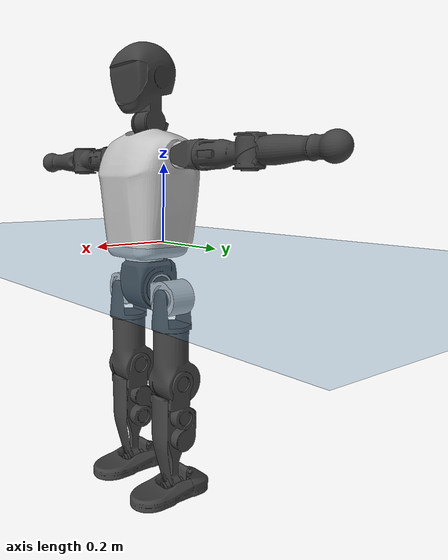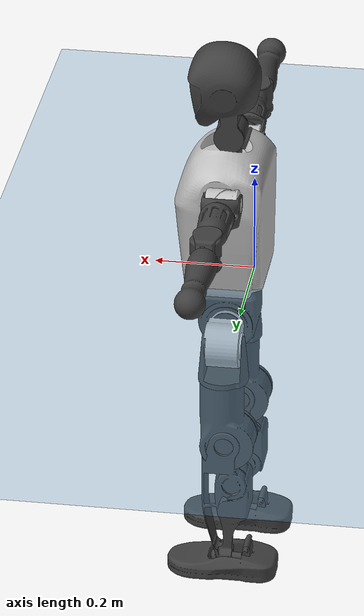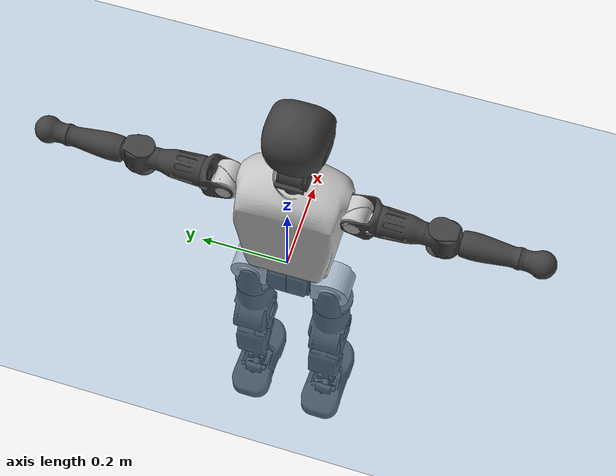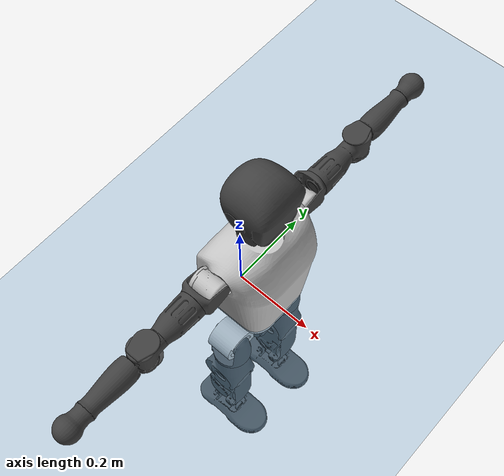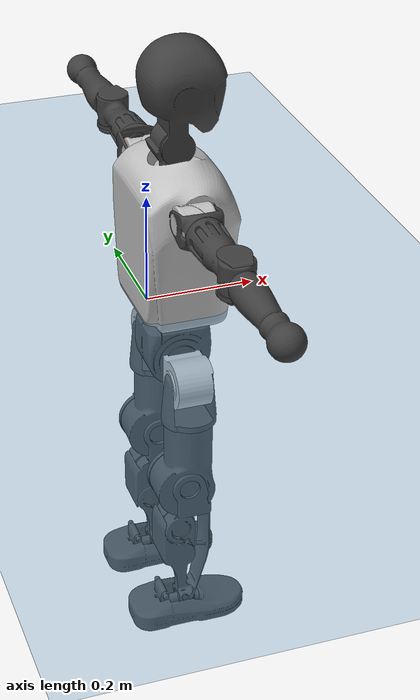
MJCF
<mujoco model="T1">
  <compiler angle="radian" assetdir="assets" balanceinertia="true" inertiafromgeom="false"/>

  <option timestep="0.005" density="1.2" viscosity="2e-05"/>

  <size nkey="1"/>

  <visual>
    <quality shadowsize="8192"/>
    <map shadowclip="0.5"/>
  </visual>

  <default>
    <default class="/">
      <joint armature="0.01" damping="0.01" frictionloss="0.1"/>
      <geom contype="0" conaffinity="0" group="1" solref="-1000 -80"/>
      <site size="0.01 0.005 0.005" group="5"/>
      <general forcelimited="true" biastype="affine" gainprm="25" biasprm="0 -25 -0.6"/>
      <default class="t1">
        <geom rgba="0.25 0.25 0.25 1"/>
        <default class="visual">
          <geom type="mesh" group="2"/>
        </default>
        <default class="collision">
          <geom group="3"/>
        </default>
        <default class="foot">
          <geom size="0.1115 0.05 0.015" type="box" condim="6" group="4" priority="1" solimp="0.015 1 0.015"/>
        </default>
        <default class="reward_collision_sphere">
          <geom group="5" rgba="1 0 0 1"/>
        </default>
      </default>
    </default>
  </default>

  <asset>
    <texture type="skybox" colorspace="auto" name="//unnamed_texture_0" builtin="gradient" rgb1="0.95 0.95 0.95" rgb2="0.95 0.95 0.95" width="100" height="600"/>
    <texture type="2d" colorspace="auto" name="texplane" builtin="checker" rgb1="0.345 0.575 0.748" rgb2="0.345 0.575 0.748" markrgb="1 1 1" width="512" height="512"/>
    <material name="MatPlane" class="/" texture="texplane" texuniform="true" texrepeat="2 2" specular="0.9"/>
    <mesh name="Trunk" class="/" file="Trunk.stl"/>
    <mesh name="H1" class="/" file="H1.stl"/>
    <mesh name="H2" class="/" file="H2.stl"/>
    <mesh name="AL1" class="/" file="AL1.stl"/>
    <mesh name="AL2" class="/" file="AL2.stl"/>
    <mesh name="AL3" class="/" file="AL3.stl"/>
    <mesh name="left_hand_link" class="/" file="left_hand_link.stl"/>
    <mesh name="AR1" class="/" file="AR1.stl"/>
    <mesh name="AR2" class="/" file="AR2.stl"/>
    <mesh name="AR3" class="/" file="AR3.stl"/>
    <mesh name="right_hand_link" class="/" file="right_hand_link.stl"/>
    <mesh name="Waist" class="/" file="Waist.stl"/>
    <mesh name="Hip_Pitch_Left" class="/" file="Hip_Pitch_Left.stl"/>
    <mesh name="Hip_Roll_Left" class="/" file="Hip_Roll_Left.stl"/>
    <mesh name="Hip_Yaw_Left" class="/" file="Hip_Yaw_Left.stl"/>
    <mesh name="Shank_Left" class="/" file="Shank_Left.stl"/>
    <mesh name="Ankle_Cross_Left" class="/" file="Ankle_Cross_Left.stl"/>
    <mesh name="left_foot_link" class="/" file="left_foot_link.stl"/>
    <mesh name="Hip_Pitch_Right" class="/" file="Hip_Pitch_Right.stl"/>
    <mesh name="Hip_Roll_Right" class="/" file="Hip_Roll_Right.stl"/>
    <mesh name="Hip_Yaw_Right" class="/" file="Hip_Yaw_Right.stl"/>
    <mesh name="Shank_Right" class="/" file="Shank_Right.stl"/>
    <mesh name="Ankle_Cross_Right" class="/" file="Ankle_Cross_Right.stl"/>
    <mesh name="right_foot_link" class="/" file="right_foot_link.stl"/>
  </asset>

  <worldbody>
    <geom name="floor" class="/" size="100 100 0.125" type="plane" group="0" material="MatPlane"/>
    <light name="toplight_shadow" class="/" pos="0 0 5" dir="0.0990148 0.0990148 -0.990148" type="directional" ambient="0.04 0.04 0.04" diffuse="0.55 0.55 0.55" specular="0.12 0.12 0.12"/>
    <light name="toplight_fill" class="/" pos="0 0 5" dir="0.0990148 0.0990148 -0.990148" type="directional" castshadow="false" ambient="0.04 0.04 0.04" diffuse="0.3 0.3 0.3" specular="0.08 0.08 0.08"/>
    <body name="trunk" childclass="t1" pos="-0.000173811 0.00106155 0.00248039" quat="1 4.39544e-05 -0.000251646 -8.48881e-05">
      <inertial pos="0.0387665 -0.00299888 0.102776" quat="0.999957 -6.96921e-05 -0.00928557 0.000213541" mass="7.70286" diaginertia="0.0227567 0.0465917 0.0476817"/>
      <joint name="//unnamed_joint_0" type="free" armature="0" damping="0" frictionloss="0"/>
      <geom name="//unnamed_geom_1" class="visual" rgba="0.76 0.76 0.76 1" mesh="Trunk"/>
      <geom name="//unnamed_geom_2" class="collision" size="0.0657416 0.0876554 0.131483" pos="0.0451813 0 0.116664" type="box"/>
      <geom name="//unnamed_geom_3" class="reward_collision_sphere" size="0.100804" pos="0.0451813 0 0.0972204"/>
      <geom name="//unnamed_geom_4" class="reward_collision_sphere" size="0.0131483" pos="0.0451813 0.0768771 0"/>
      <geom name="//unnamed_geom_5" class="reward_collision_sphere" size="0.0131483" pos="0.0451813 -0.0768771 0"/>
      <geom name="//unnamed_geom_6" class="reward_collision_sphere" size="0.0131483" pos="0.0451813 0.0967747 0.174997"/>
      <geom name="//unnamed_geom_7" class="reward_collision_sphere" size="0.0131483" pos="0.0451813 -0.0967747 0.174997"/>
      <site name="imu" pos="-0.0128164 0.0123219 -0.0130755" size="0.00876554"/>
      <camera name="track" pos="0 -1.80887 0" quat="0.707107 0.707107 0 0" mode="trackcom"/>
      <camera name="ego_camera" pos="0.0918687 0 0.408326" quat="-0.5 -0.5 0.5 0.5"/>
      <body name="H1" pos="0.046197 0.000531765 0.235729" quat="0.999999 0.00108582 -0.000751688 -0.000371279">
        <inertial pos="-0.00121023 -0.00212009 0.0560586" quat="0.762506 -0.00832794 0.00141614 0.646926" mass="0.318215" diaginertia="5.84424e-05 0.000139859 0.000134951"/>
        <joint name="AAHead_yaw" pos="0 0 0" axis="-0.00333526 -0.0094986 0.999949" range="-1.59267 1.56102" armature="0.0100192" damping="0" frictionloss="0.0897945"/>
        <geom name="//unnamed_geom_8" class="visual" mesh="H1"/>
        <body name="H2" pos="0.00170006 -0.00246144 0.0599673" quat="1 0.000486004 -0.000541286 0.000316714">
          <inertial pos="0.00470603 -0.000177722 0.096162" quat="0.988571 0.107363 -0.0761252 -0.0735268" mass="0.428326" diaginertia="0.00049579 0.00116653 0.00153529"/>
          <joint name="Head_pitch" pos="0 0 0" axis="0.00983643 -0.99991 0.00911687" stiffness="0.00732052" range="-1.20133 0.307985" armature="0.00912196" damping="0" frictionloss="0.0921314"/>
          <geom name="//unnamed_geom_9" class="visual" mesh="H2"/>
          <geom name="//unnamed_geom_10" class="collision" size="0.0701243" pos="0.00753022 0 0.106942"/>
          <geom name="//unnamed_geom_11" class="reward_collision_sphere" size="0.0788899" pos="0.0150604 0 0.0972204"/>
        </body>
      </body>
      <body name="AL1" pos="0.0433334 0.0982518 0.213231" quat="0.999999 0.000642603 -0.00074597 0.000519527">
        <inertial pos="-0.000557693 0.0433322 0.000197662" quat="0.507033 0.491331 -0.504818 0.49666" mass="0.354358" diaginertia="0.000339529 0.000775957 0.000251576"/>
        <joint name="Left_Shoulder_Pitch" pos="0 0 0" axis="0.00500572 0.999987 0.000626254" range="-3.28594 1.23655" armature="0.00879503" damping="0.00780153" frictionloss="0.077456"/>
        <geom name="//unnamed_geom_12" class="visual" rgba="0.76 0.76 0.76 1" mesh="AL1"/>
        <body name="AL2" pos="-0.00129943 0.0447331 0.000119259" quat="1 -9.8921e-06 2.03705e-07 -1.26662e-05">
          <inertial pos="0.00181263 0.0348746 0.0025184" quat="0.487757 0.511684 -0.487934 0.512048" mass="0.114993" diaginertia="0.000100008 0.0002082 0.000161629"/>
          <joint name="Left_Shoulder_Roll" pos="0 0 0" axis="-0.99999 0.0038517 -0.00234217" stiffness="0.00686513" range="-1.51883 1.79293" armature="0.00775575" damping="0" frictionloss="0.0880533"/>
          <geom name="//unnamed_geom_13" class="visual" mesh="AL2"/>
          <body name="AL3" pos="0.00341417 0.0561721 -0.00169559" quat="1 0.00062314 -0.000121616 -0.000366852">
            <inertial pos="0.00216376 0.0769742 -0.000245204" quat="0.705154 0.709014 -0.00705475 0.00267877" mass="0.694406" diaginertia="0.00300678 0.0079564 0.000522205"/>
            <joint name="Left_Elbow_Pitch" pos="0 0 0" axis="-0.0110551 -0.999937 0.0016977" range="-2.22181 2.32568" armature="0.00782711" damping="0.00961972" frictionloss="0.0761642"/>
            <geom name="//unnamed_geom_14" class="visual" mesh="AL3"/>
            <geom name="//unnamed_geom_15" class="collision" size="0.0262966 0.0657416" pos="0 0.0452218 0" quat="0.707105 0.707108 0 0" type="cylinder"/>
            <geom name="//unnamed_geom_16" class="reward_collision_sphere" size="0.031556"/>
            <body name="left_hand_link" pos="-0.00210696 0.136085 0.0028216" quat="1 0.000240977 -0.000385817 -0.000430024">
              <inertial pos="0.000287609 0.0981435 0.0021014" quat="0.707513 0.706701 4.58299e-05 -6.58232e-05" mass="0.220487" diaginertia="0.002054 0.00508127 0.000187755"/>
              <joint name="Left_Elbow_Yaw" pos="0 0 0" axis="-0.0072058 0.000631068 0.999974" range="-2.47001 -0.00536514" armature="0.0100257" damping="0.00987062" frictionloss="0.0785412"/>
              <geom name="//unnamed_geom_17" class="visual" mesh="left_hand_link"/>
              <geom name="//unnamed_geom_18" class="collision" size="0.0262966 0.0766985" pos="0 0.117577 0" quat="0.707105 0.707108 0 0" type="cylinder"/>
              <geom name="//unnamed_geom_19" class="reward_collision_sphere" size="0.0438277"/>
              <geom name="//unnamed_geom_20" class="reward_collision_sphere" size="0.0306794" pos="0 0.099488 0"/>
              <geom name="//unnamed_geom_21" class="reward_collision_sphere" size="0.0306794" pos="0 0.194454 0"/>
            </body>
          </body>
        </body>
      </body>
      <body name="AR1" pos="0.0402145 -0.0925731 0.213161" quat="1 -0.000218348 0.00078863 0.000532352">
        <inertial pos="-0.00340029 -0.0405446 0.00248983" quat="0.501514 0.493132 -0.499931 0.505345" mass="0.365105" diaginertia="0.000324963 0.000767806 0.000262724"/>
        <joint name="Right_Shoulder_Pitch" pos="0 0 0" axis="-0.000584203 -1 0.000114264" stiffness="0.00500346" range="-1.2306 3.30212" armature="0.00886268" damping="0.0108181" frictionloss="0.0762279"/>
        <geom name="//unnamed_geom_22" class="visual" rgba="0.76 0.76 0.76 1" mesh="AR1"/>
        <body name="AR2" pos="-4.84759e-05 -0.0413842 0.000519822" quat="1 -7.01832e-05 6.04896e-05 0.000102644">
          <inertial pos="0.00303781 -0.0353921 0.00228071" quat="0.511418 0.488069 -0.512295 0.487642" mass="0.108404" diaginertia="9.62939e-05 0.000216012 0.000157046"/>
          <joint name="Right_Shoulder_Roll" pos="0 0 0" axis="-0.999877 0.00650263 0.014274" range="-1.70187 1.62035" armature="0.00769018" damping="0.0178508" frictionloss="0.0829594"/>
          <geom name="//unnamed_geom_23" class="visual" mesh="AR2"/>
          <body name="AR3" pos="0.000688465 -0.0538586 -0.002283" quat="1 -0.000166041 -9.3186e-06 3.48705e-05">
            <inertial pos="-0.000240754 -0.0799008 0.00284" quat="0.703291 0.710804 -0.00538973 0.0104532" mass="0.683165" diaginertia="0.00318395 0.00750387 0.00055925"/>
            <joint name="Right_Elbow_Pitch" pos="0 0 0" axis="0.00276891 0.999972 -0.00689665" range="-2.22673 2.21627" armature="0.00883091" damping="0.0214307" frictionloss="0.088613"/>
            <geom name="//unnamed_geom_24" class="visual" mesh="AR3"/>
            <geom name="//unnamed_geom_25" class="collision" size="0.0262966 0.0657416" pos="0 -0.0452218 0" quat="0.707105 0.707108 0 0" type="cylinder"/>
            <geom name="//unnamed_geom_26" class="reward_collision_sphere" size="0.031556"/>
            <body name="right_hand_link" pos="0.000550665 -0.13328 -0.000300409" quat="1 -0.000238322 0.000114904 0.000644194">
              <inertial pos="9.74957e-05 -0.0979894 -0.00192809" quat="0.707665 0.706538 0.0035542 0.00137076" mass="0.217784" diaginertia="0.00194728 0.00489313 0.0001794"/>
              <joint name="Right_Elbow_Yaw" pos="0 0 0" axis="0.000841127 0.0015277 0.999998" stiffness="0.00244567" range="-0.0219759 2.44829" armature="0.00821686" damping="0.000829145" frictionloss="0.0985862"/>
              <geom name="//unnamed_geom_27" class="visual" mesh="right_hand_link"/>
              <geom name="//unnamed_geom_28" class="collision" size="0.0262966 0.0766985" pos="0 -0.117577 0" quat="0.707105 0.707108 0 0" type="cylinder"/>
              <geom name="//unnamed_geom_29" class="reward_collision_sphere" size="0.0438277"/>
              <geom name="//unnamed_geom_30" class="reward_collision_sphere" size="0.0306794" pos="0 -0.099488 0"/>
              <geom name="//unnamed_geom_31" class="reward_collision_sphere" size="0.0306794" pos="0 -0.194454 0"/>
            </body>
          </body>
        </body>
      </body>
      <body name="Waist" pos="0.0488036 -0.000605117 -0.111434" quat="1 -0.000164059 0.000305461 -0.00016193">
        <inertial pos="-0.000626455 0.00179345 0.006921" quat="0.983406 0.00285009 -0.181293 0.00606979" mass="1.73543" diaginertia="0.00125726 0.00321522 0.0041849"/>
        <joint name="Waist" pos="0 0 0" axis="0.00393747 -0.00975663 0.999945" stiffness="0.00709361" range="-1.56727 1.56662" armature="0.00810963" damping="0.024063" frictionloss="0.0852703"/>
        <geom name="//unnamed_geom_32" class="visual" mesh="Waist"/>
        <body name="Hip_Pitch_Left" pos="-0.00156598 0.0978277 0.0022192" quat="0.999999 -0.000129045 0.000108252 -0.00118113">
          <inertial pos="-0.00216525 -0.00433403 -0.0176677" quat="0.975048 0.221487 0.0149388 0.00151035" mass="0.678666" diaginertia="0.00042488 0.000861922 0.0010886"/>
          <joint name="Left_Hip_Pitch" pos="0 0 0" axis="0.00311969 0.999993 0.00206298" range="-1.79272 1.57522" armature="0.00744395" damping="0.0141173" frictionloss="0.0982964"/>
          <geom name="//unnamed_geom_33" class="visual" rgba="0.76 0.76 0.76 1" mesh="Hip_Pitch_Left"/>
          <body name="Hip_Roll_Left" pos="0.00313057 -0.00205424 -0.0218914" quat="1 -0.000194069 0.000174943 0.000555894">
            <inertial pos="0.00322479 -0.00148692 -0.0547478" quat="0.708437 -0.00668724 -0.00986138 0.705674" mass="0.250677" diaginertia="0.000425659 0.000907871 0.000442356"/>
            <joint name="Left_Hip_Roll" pos="0 0 0" axis="-1 -0.000239893 0.000365683" range="-1.57095 0.208528" armature="0.00978072" damping="0.0220758" frictionloss="0.0885025"/>
            <geom name="//unnamed_geom_34" class="visual" mesh="Hip_Roll_Left"/>
            <geom name="//unnamed_geom_35" class="reward_collision_sphere" size="0.0482105"/>
            <body name="Hip_Yaw_Left" pos="0.000138472 0.00135379 -0.0782424" quat="1 0.000186159 -0.00029332 -2.02921e-05">
              <inertial pos="-0.00530801 0.00157891 -0.0841597" quat="0.697536 -0.034261 -0.0317842 0.715024" mass="1.49588" diaginertia="0.00638983 0.0157039 0.00228277"/>
              <joint name="Left_Hip_Yaw" pos="0 0 0" axis="-0.000660008 0.00206346 -0.999998" stiffness="0.0028248" range="-0.997138 1.00065" armature="0.00876101" damping="0.00169241" frictionloss="0.0983739"/>
              <geom name="//unnamed_geom_36" class="visual" mesh="Hip_Yaw_Left"/>
              <geom name="//unnamed_geom_37" class="collision" size="0.0438277 0.0701243" type="cylinder"/>
              <body name="Shank_Left" pos="-0.00899385 -0.00197911 -0.13306" quat="0.999999 0.000469725 0.000296518 0.00133215">
                <inertial pos="-0.00401744 -0.00173363 -0.120045" quat="0.998084 0.0114846 -0.0231349 0.056221" mass="1.18995" diaginertia="0.00851075 0.0215934 0.001632"/>
                <joint name="Left_Knee_Pitch" pos="0 0 0" axis="0.0091973 0.999919 0.00880261" range="-0.0123156 2.28458" armature="0.0100449" damping="0" frictionloss="0.0870709"/>
                <geom name="//unnamed_geom_38" class="visual" mesh="Shank_Left"/>
                <geom name="//unnamed_geom_39" class="collision" size="0.0438277 0.0657416" pos="0 0 -0.116664" type="cylinder"/>
                <geom name="//unnamed_geom_40" class="reward_collision_sphere" size="0.056976"/>
                <body name="Ankle_Cross_Left" pos="0.00184006 -0.00309756 -0.271767" quat="1 0.000133869 -0.000107623 0.000729832">
                  <inertial pos="-0.0017061 -0.00016936 -0.00769528" quat="0.433438 0.559996 0.552227 0.439979" mass="0.047497" diaginertia="7.21837e-06 1.54148e-05 9.76686e-06"/>
                  <joint name="Left_Ankle_Pitch" pos="0 0 0" axis="-0.000919994 0.999998 0.00158146" stiffness="0.00894301" range="-0.917963 0.400307" armature="0.00978776" damping="0.00158919" frictionloss="0.0972546"/>
                  <geom name="//unnamed_geom_41" class="visual" mesh="Ankle_Cross_Left"/>
                  <body name="left_foot_link" pos="-0.00263644 -0.00162903 -0.0145446" quat="0.999999 -0.00121838 7.6255e-05 -0.000300728">
                    <inertial pos="0.00016332 -0.00052335 -0.00957227" quat="-0.00535225 0.611136 -0.00385839 0.791498" mass="0.473604" diaginertia="0.000657755 0.00148045 0.00199534"/>
                    <joint name="Left_Ankle_Roll" pos="0 0 0" axis="-0.999932 0.00840656 0.00808502" stiffness="0.00839794" range="-0.432598 0.487888" armature="0.00883089" damping="0.00977335" frictionloss="0.0957806"/>
                    <geom name="//unnamed_geom_42" class="visual" mesh="left_foot_link"/>
                    <geom name="left_foot" class="foot" size="0.102478 0.0405893 0.0140215" pos="0.00753022 0 -0.0145831"/>
                    <geom name="//unnamed_geom_44" class="reward_collision_sphere" size="0.0455808" pos="0.00753022 0 -0.0145831"/>
                    <geom name="//unnamed_geom_45" class="reward_collision_sphere" size="0.0262966" pos="0.0715371 -0.020802 -0.0145831"/>
                    <geom name="//unnamed_geom_46" class="reward_collision_sphere" size="0.0262966" pos="-0.0527116 -0.020802 -0.0145831"/>
                    <site name="left_foot" class="foot" pos="0.00753022 0 -0.0145831" size="0.00876554"/>
                  </body>
                </body>
              </body>
            </body>
          </body>
        </body>
        <body name="Hip_Pitch_Right" pos="-0.0010787 -0.0958613 -0.000419215" quat="1 -0.00055874 0.000283991 -0.000233692">
          <inertial pos="-0.000374899 0.00703258 -0.0187891" quat="0.971188 -0.237816 0.0151677 0.00262918" mass="0.661243" diaginertia="0.000424616 0.000879608 0.0010497"/>
          <joint name="Right_Hip_Pitch" pos="0 0 0" axis="-0.00040548 -0.999994 0.00350061" range="-1.5768 1.75746" armature="0.00909471" damping="0.0091787" frictionloss="0.0897342"/>
          <geom name="//unnamed_geom_47" class="visual" rgba="0.76 0.76 0.76 1" mesh="Hip_Pitch_Right"/>
          <body name="Hip_Roll_Right" pos="0.00214621 0.000204573 -0.0217501" quat="1 1.69092e-05 -3.69631e-05 3.16314e-05">
            <inertial pos="0.00176811 0.00189635 -0.052069" quat="0.710121 0.000729566 0.00498511 0.704061" mass="0.2483" diaginertia="0.0004189 0.000908325 0.000428094"/>
            <joint name="Right_Hip_Roll" pos="0 0 0" axis="-0.999978 0.00254428 -0.00615312" stiffness="0.00717132" range="-0.179308 1.57074" armature="0.00778215" damping="0.00805343" frictionloss="0.0890639"/>
            <geom name="//unnamed_geom_48" class="visual" mesh="Hip_Roll_Right"/>
            <geom name="//unnamed_geom_49" class="reward_collision_sphere" size="0.0482105"/>
            <body name="Hip_Yaw_Right" pos="-0.00269316 0.00147621 -0.0793653" quat="1 0.000265654 0.000149405 -0.000454055">
              <inertial pos="-0.00805633 -0.000358491 -0.0890633" quat="0.711643 -0.0363481 -0.0212031 0.70128" mass="1.49551" diaginertia="0.00618044 0.0149664 0.00219927"/>
              <joint name="Right_Hip_Yaw" pos="0 0 0" axis="0.000498719 -0.000687635 -1" range="-0.949128 0.959417" armature="0.00842668" damping="0.00352645" frictionloss="0.0879143"/>
              <geom name="//unnamed_geom_50" class="visual" mesh="Hip_Yaw_Right"/>
              <geom name="//unnamed_geom_51" class="collision" size="0.0438277 0.0701243" type="cylinder"/>
              <body name="Shank_Right" pos="-0.00961935 0.00195101 -0.127439" quat="1 -0.000117073 -0.000236116 4.87936e-05">
                <inertial pos="-0.00242502 -0.000815652 -0.12054" quat="0.999463 -0.011788 -0.0206248 -0.0225516" mass="1.12535" diaginertia="0.00820916 0.0211244 0.00165287"/>
                <joint name="Right_Knee_Pitch" pos="0 0 0" axis="0.00518732 -0.999986 -0.00141793" range="-2.34664 -0.0204897" armature="0.00972521" damping="0" frictionloss="0.09981"/>
                <geom name="//unnamed_geom_52" class="visual" mesh="Shank_Right"/>
                <geom name="//unnamed_geom_53" class="collision" size="0.0438277 0.0657416" pos="0 0 -0.116664" type="cylinder"/>
                <geom name="//unnamed_geom_54" class="reward_collision_sphere" size="0.056976"/>
                <body name="Ankle_Cross_Right" pos="-0.00140206 -0.00299477 -0.271417" quat="0.999999 0.000322848 -0.000921426 -0.00086865">
                  <inertial pos="-0.00195698 -0.00027748 -0.00670455" quat="0.444861 0.550894 0.550451 0.442287" mass="0.0489562" diaginertia="6.73572e-06 1.54348e-05 9.72649e-06"/>
                  <joint name="Right_Ankle_Pitch" pos="0 0 0" axis="-5.82361e-05 -1 8.15505e-05" range="-0.382549 0.917267" armature="0.00898525" damping="0.0212456" frictionloss="0.0873089"/>
                  <geom name="//unnamed_geom_55" class="visual" mesh="Ankle_Cross_Right"/>
                  <body name="right_foot_link" pos="0.000142372 -0.00116234 -0.0135315" quat="0.999999 0.000114899 0.00136967 -0.000250929">
                    <inertial pos="-0.0028394 0.000773935 -0.00873226" quat="-0.000285339 0.620626 -1.96596e-05 0.784107" mass="0.461294" diaginertia="0.000633494 0.00140003 0.00189156"/>
                    <joint name="Right_Ankle_Roll" pos="0 0 0" axis="-0.999999 0.000360315 0.00141056" stiffness="0.00507026" range="-0.39749 0.406477" armature="0.00882628" damping="0.00251505" frictionloss="0.0847144"/>
                    <geom name="//unnamed_geom_56" class="visual" mesh="right_foot_link"/>
                    <geom name="right_foot" class="foot" size="0.0997738 0.0424366 0.0136879" pos="0.00753022 0 -0.0145831"/>
                    <geom name="//unnamed_geom_58" class="reward_collision_sphere" size="0.0350622"/>
                    <geom name="//unnamed_geom_59" class="reward_collision_sphere" size="0.0262966" pos="0.00753022 0 -0.0145831"/>
                    <geom name="//unnamed_geom_60" class="reward_collision_sphere" size="0.0262966" pos="0.0715371 0.020802 -0.0145831"/>
                    <geom name="//unnamed_geom_61" class="reward_collision_sphere" size="0.0262966" pos="-0.0527116 0.020802 -0.0145831"/>
                    <site name="right_foot" class="foot" pos="0.00753022 0 -0.0145831" size="0.00876554"/>
                  </body>
                </body>
              </body>
            </body>
          </body>
        </body>
      </body>
    </body>
  </worldbody>

  <contact>
    <pair class="/" geom1="floor" geom2="left_foot" name="//unnamed_contact_0"/>
    <pair class="/" geom1="floor" geom2="right_foot" name="//unnamed_contact_1"/>
  </contact>

  <actuator>
    <general name="AAHead_yaw" class="/" joint="AAHead_yaw" forcerange="-6.13204 6.13204" gainprm="20.4989" biasprm="0 -20.4989 -0.491302"/>
    <general name="Head_pitch" class="/" joint="Head_pitch" forcerange="-6.00778 6.00778" gainprm="20.4989" biasprm="0 -20.4989 -0.491302"/>
    <general name="Left_Shoulder_Pitch" class="/" joint="Left_Shoulder_Pitch" forcerange="-15.1662 15.1662" gainprm="20.4989" biasprm="0 -20.4989 -0.491302"/>
    <general name="Left_Shoulder_Roll" class="/" joint="Left_Shoulder_Roll" forcerange="-14.5903 14.5903" gainprm="20.4989" biasprm="0 -20.4989 -0.491302"/>
    <general name="Left_Elbow_Pitch" class="/" joint="Left_Elbow_Pitch" forcerange="-14.3814 14.3814" gainprm="20.4989" biasprm="0 -20.4989 -0.491302"/>
    <general name="Left_Elbow_Yaw" class="/" joint="Left_Elbow_Yaw" forcerange="-17.4591 17.4591" gainprm="20.4989" biasprm="0 -20.4989 -0.491302"/>
    <general name="Right_Shoulder_Pitch" class="/" joint="Right_Shoulder_Pitch" forcerange="-17.4147 17.4147" gainprm="20.4989" biasprm="0 -20.4989 -0.491302"/>
    <general name="Right_Shoulder_Roll" class="/" joint="Right_Shoulder_Roll" forcerange="-15.234 15.234" gainprm="20.4989" biasprm="0 -20.4989 -0.491302"/>
    <general name="Right_Elbow_Pitch" class="/" joint="Right_Elbow_Pitch" forcerange="-15.7462 15.7462" gainprm="20.4989" biasprm="0 -20.4989 -0.491302"/>
    <general name="Right_Elbow_Yaw" class="/" joint="Right_Elbow_Yaw" forcerange="-15.715 15.715" gainprm="20.4989" biasprm="0 -20.4989 -0.491302"/>
    <general name="Waist" class="/" joint="Waist" forcerange="-26.4858 26.4858" gainprm="20.4989" biasprm="0 -20.4989 -0.491302"/>
    <general name="Left_Hip_Pitch" class="/" joint="Left_Hip_Pitch" forcerange="-38.1139 38.1139" gainprm="20.4989" biasprm="0 -20.4989 -0.491302"/>
    <general name="Left_Hip_Roll" class="/" joint="Left_Hip_Roll" forcerange="-28.9258 28.9258" gainprm="20.4989" biasprm="0 -20.4989 -0.491302"/>
    <general name="Left_Hip_Yaw" class="/" joint="Left_Hip_Yaw" forcerange="-23.9542 23.9542" gainprm="20.4989" biasprm="0 -20.4989 -0.491302"/>
    <general name="Left_Knee_Pitch" class="/" joint="Left_Knee_Pitch" forcerange="-47.7021 47.7021" gainprm="20.4989" biasprm="0 -20.4989 -0.491302"/>
    <general name="Left_Ankle_Pitch" class="/" joint="Left_Ankle_Pitch" forcerange="-17.875 17.875" gainprm="20.4989" biasprm="0 -20.4989 -0.491302"/>
    <general name="Left_Ankle_Roll" class="/" joint="Left_Ankle_Roll" forcerange="-13.2048 13.2048" gainprm="20.4989" biasprm="0 -20.4989 -0.491302"/>
    <general name="Right_Hip_Pitch" class="/" joint="Right_Hip_Pitch" forcerange="-39.5979 39.5979" gainprm="20.4989" biasprm="0 -20.4989 -0.491302"/>
    <general name="Right_Hip_Roll" class="/" joint="Right_Hip_Roll" forcerange="-25.8519 25.8519" gainprm="20.4989" biasprm="0 -20.4989 -0.491302"/>
    <general name="Right_Hip_Yaw" class="/" joint="Right_Hip_Yaw" forcerange="-28.1014 28.1014" gainprm="20.4989" biasprm="0 -20.4989 -0.491302"/>
    <general name="Right_Knee_Pitch" class="/" joint="Right_Knee_Pitch" forcerange="-53.235 53.235" gainprm="20.4989" biasprm="0 -20.4989 -0.491302"/>
    <general name="Right_Ankle_Pitch" class="/" joint="Right_Ankle_Pitch" forcerange="-15.7052 15.7052" gainprm="20.4989" biasprm="0 -20.4989 -0.491302"/>
    <general name="Right_Ankle_Roll" class="/" joint="Right_Ankle_Roll" forcerange="-13.1049 13.1049" gainprm="20.4989" biasprm="0 -20.4989 -0.491302"/>
  </actuator>

  <sensor>
    <gyro site="imu" name="imu_angular_velocity"/>
    <velocimeter site="imu" name="imu_linear_velocity"/>
    <framelinvel objtype="site" objname="left_foot" name="left_foot_global_linear_velocity"/>
    <framelinvel objtype="site" objname="right_foot" name="right_foot_global_linear_velocity"/>
  </sensor>

  <keyframe>
    <key name="home" qpos="0 0 0.6385 1 0 0 0 0 0 0 1.4 0 -0.4 0 -1.4 0 0.4 0 -0.4 0 0 0.8 -0.4 0 0.4 0 0 -0.8 0.4 0"/>
  </keyframe>
</mujoco>
